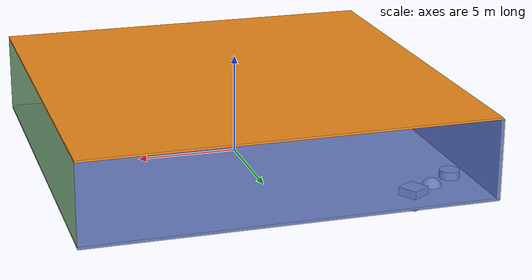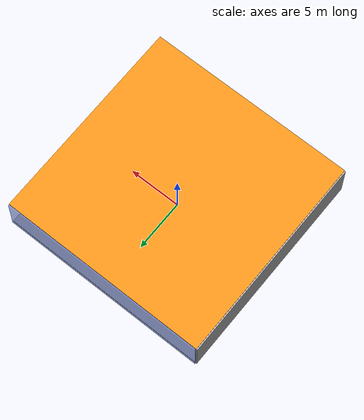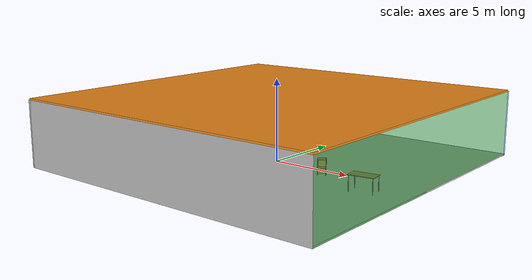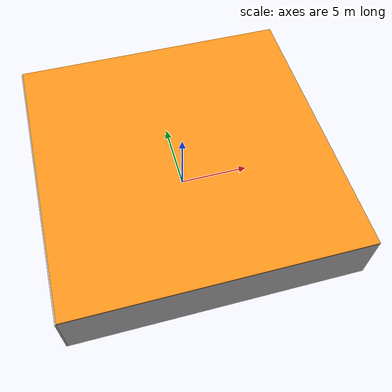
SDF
<sdf version="1.4">
 <world name="default">
  <physics type="ode">
   <max_step_size>0.001</max_step_size>
   <real_time_factor>1</real_time_factor>
   <real_time_update_rate>1000</real_time_update_rate>
   <gravity>0 0 -9.8</gravity>
  </physics>
  <scene><ambient>0.4 0.4 0.4 1</ambient><background>0.7 0.7 0.7 1</background><shadows>1</shadows></scene>
  <model name="Surrounding">
   <static>1</static>
   <link name="Ceiling">
    <collision name="Ceiling_Collision"><geometry><box><size>20 20 0.1</size></box></geometry></collision>
    <visual name="Ceiling_Visual">
     <geometry><box><size>20 20 0.1</size></box></geometry>
     <material>
      <script><uri>file://media/materials/scripts/gazebo.material</uri><name>Gazebo/Orange</name></script>
     </material>
    </visual>
    <pose>0 0 4.05 0 0 0</pose>
   </link>
   <link name="Wall_South">
    <collision name="Wall_South_Collision">
     <geometry><box><size>20 0 4</size></box></geometry>
     <pose>0 0 2 0 -0 0</pose>
    </collision>
    <visual name="Wall_South_Visual">
     <pose>0 0 2 0 -0 0</pose>
     <geometry><box><size>20 0 4</size></box></geometry>
     <material>
      <script><uri>file://media/materials/scripts/gazebo.material</uri><name>Gazebo/LightOn</name></script>
     </material>
    </visual>
    <velocity_decay><linear>0</linear><angular>0</angular></velocity_decay>
    <pose>0 -10 0 0 -0 0</pose>
   </link>
   <link name="Wall_East">
    <collision name="Wall_21_Collision">
     <geometry><box><size>20 0 4</size></box></geometry>
     <pose>0 0 2 0 -0 0</pose>
    </collision>
    <visual name="Wall_21_Visual">
     <pose>0 0 2 0 -0 0</pose>
     <geometry><box><size>20 0 4</size></box></geometry>
     <material>
      <script><uri>file://media/materials/scripts/gazebo.material</uri><name>Gazebo/GreenTransparent</name></script>
     </material>
    </visual>
    <velocity_decay><linear>0</linear><angular>0</angular></velocity_decay>
    <pose>10 0 0 0 -0 1.5708</pose>
   </link>
   <link name="Wall_North">
    <collision name="Wall_22_Collision">
     <geometry><box><size>20 0.2 4</size></box></geometry>
     <pose>0 0 2 0 -0 0</pose>
    </collision>
    <visual name="Wall_22_Visual">
     <pose>0 0 2 0 -0 0</pose>
     <geometry><box><size>20 0.2 4</size></box></geometry>
     <material>
      <script><uri>file://media/materials/scripts/gazebo.material</uri><name>Gazebo/BlueTransparent</name></script>
     </material>
    </visual>
    <velocity_decay><linear>0</linear><angular>0</angular></velocity_decay>
    <pose>0 10 0 0 -0 0</pose>
   </link>
   <link name="Wall_West">
    <collision name="Wall_23_Collision">
     <geometry><box><size>20 0.2 4</size></box></geometry>
     <pose>0 0 2 0 -0 0</pose>
    </collision>
    <visual name="Wall_23_Visual">
     <pose>0 0 2 0 -0 0</pose>
     <geometry><box><size>20 0.2 4</size></box></geometry>
     <material>
      <script><uri>file://media/materials/scripts/gazebo.material</uri><name>Gazebo/CloudySky</name></script>
     </material>
    </visual>
    <velocity_decay><linear>0</linear><angular>0</angular></velocity_decay>
    <pose>-10 0 0 0 0 -1.5708</pose>
   </link>
   <link name="Ground_link">
    <collision name="collision">
     <pose>0 0 .05 0 -0 0</pose>
     <geometry><box><size>20 20 0.1</size></box></geometry>
    </collision>
    <visual name="visual">
     <pose>0 0 .05 0 -0 0</pose>
     <geometry><box><size>20 20 0.1</size></box></geometry>
     <material>
      <script><uri>file://media/materials/scripts/gazebo.material</uri><name>Gazebo/Pioneer2Body</name></script>
     </material>
    </visual>
   </link>
   <static>1</static>
  </model>
  <spherical_coordinates>
   <surface_model>EARTH_WGS84</surface_model>
   <latitude_deg>0</latitude_deg>
   <longitude_deg>0</longitude_deg>
   <elevation>0</elevation>
   <heading_deg>0</heading_deg>
  </spherical_coordinates>
  <light name="lightball_0" type="diffuse">
   <diffuse>0.8 0.8 0.8 1</diffuse>
   <specular>0.2 0.2 0.2 1</specular>
   <attenuation>
    <range>100</range>
    <constant>0.7</constant>
    <linear>0.01</linear>
    <quadratic>0.001</quadratic>
   </attenuation>
   <direction>-0.5 0.1 -0.9</direction>
   <pose>5.12512241517 4.22105317903 3.78284284643 0 0 0</pose>
  </light>
  <light name="lightball_1" type="diffuse">
   <diffuse>0.8 0.8 0.8 1</diffuse>
   <specular>0.2 0.2 0.2 1</specular>
   <attenuation>
    <range>100</range>
    <constant>0.7</constant>
    <linear>0.01</linear>
    <quadratic>0.001</quadratic>
   </attenuation>
   <direction>-0.5 0.1 -0.9</direction>
   <pose>-6.09373479959 -5.58866130091 2.37450169521 0 0 0</pose>
  </light>
  <light name="lightball_2" type="diffuse">
   <diffuse>0.8 0.8 0.8 1</diffuse>
   <specular>0.2 0.2 0.2 1</specular>
   <attenuation>
    <range>100</range>
    <constant>0.7</constant>
    <linear>0.01</linear>
    <quadratic>0.001</quadratic>
   </attenuation>
   <direction>-0.5 0.1 -0.9</direction>
   <pose>-9.2826962754 -2.41522200567 3.29741099689 0 0 0</pose>
  </light>
  <light name="lightball_3" type="diffuse">
   <diffuse>0.8 0.8 0.8 1</diffuse>
   <specular>0.2 0.2 0.2 1</specular>
   <attenuation>
    <range>100</range>
    <constant>0.7</constant>
    <linear>0.01</linear>
    <quadratic>0.001</quadratic>
   </attenuation>
   <direction>-0.5 0.1 -0.9</direction>
   <pose>3.22892468359 -5.47058754685 1.05128812809 0 0 0</pose>
  </light>
  <light name="lightball_4" type="diffuse">
   <diffuse>0.8 0.8 0.8 1</diffuse>
   <specular>0.2 0.2 0.2 1</specular>
   <attenuation>
    <range>100</range>
    <constant>0.7</constant>
    <linear>0.01</linear>
    <quadratic>0.001</quadratic>
   </attenuation>
   <direction>-0.5 0.1 -0.9</direction>
   <pose>-3.42729114426 5.61952186561 1.46188058025 0 0 0</pose>
  </light>
  <light name="lightball_5" type="diffuse">
   <diffuse>0.8 0.8 0.8 1</diffuse>
   <specular>0.2 0.2 0.2 1</specular>
   <attenuation>
    <range>100</range>
    <constant>0.7</constant>
    <linear>0.01</linear>
    <quadratic>0.001</quadratic>
   </attenuation>
   <direction>-0.5 0.1 -0.9</direction>
   <pose>5.53591554812 -8.19523820074 2.99412547549 0 0 0</pose>
  </light>
  <light name="lightball_6" type="diffuse">
   <diffuse>0.8 0.8 0.8 1</diffuse>
   <specular>0.2 0.2 0.2 1</specular>
   <attenuation>
    <range>100</range>
    <constant>0.7</constant>
    <linear>0.01</linear>
    <quadratic>0.001</quadratic>
   </attenuation>
   <direction>-0.5 0.1 -0.9</direction>
   <pose>5.42726969293 -2.22518445737 1.51669404815 0 0 0</pose>
  </light>
  <light name="lightball_7" type="diffuse">
   <diffuse>0.8 0.8 0.8 1</diffuse>
   <specular>0.2 0.2 0.2 1</specular>
   <attenuation>
    <range>100</range>
    <constant>0.7</constant>
    <linear>0.01</linear>
    <quadratic>0.001</quadratic>
   </attenuation>
   <direction>-0.5 0.1 -0.9</direction>
   <pose>3.92855679111 -1.64981221955 0.764712430678 0 0 0</pose>
  </light>
  <light name="lightball_8" type="diffuse">
   <diffuse>0.8 0.8 0.8 1</diffuse>
   <specular>0.2 0.2 0.2 1</specular>
   <attenuation>
    <range>100</range>
    <constant>0.7</constant>
    <linear>0.01</linear>
    <quadratic>0.001</quadratic>
   </attenuation>
   <direction>-0.5 0.1 -0.9</direction>
   <pose>-2.9348345834 9.29928177228 1.36158978706 0 0 0</pose>
  </light>
  <light name="lightball_9" type="diffuse">
   <diffuse>0.8 0.8 0.8 1</diffuse>
   <specular>0.2 0.2 0.2 1</specular>
   <attenuation>
    <range>100</range>
    <constant>0.7</constant>
    <linear>0.01</linear>
    <quadratic>0.001</quadratic>
   </attenuation>
   <direction>-0.5 0.1 -0.9</direction>
   <pose>-8.91385295296 -9.75492982236 3.50187521427 0 0 0</pose>
  </light>
  <light name="lightball_10" type="diffuse">
   <diffuse>0.8 0.8 0.8 1</diffuse>
   <specular>0.2 0.2 0.2 1</specular>
   <attenuation>
    <range>100</range>
    <constant>0.7</constant>
    <linear>0.01</linear>
    <quadratic>0.001</quadratic>
   </attenuation>
   <direction>-0.5 0.1 -0.9</direction>
   <pose>-7.30330136603 3.28929960534 1.30818447717 0 0 0</pose>
  </light>
  <include>
   <uri>model://textured_shapes</uri>
   <pose>-7.61241600501 7.65115245031 0 0 0 2.12663050162</pose>
  </include>
  <include><uri>model://cabinet</uri><pose>3.99102096946 -0.976783138817 0 0 0 2.12346546964</pose></include>
  <include><uri>model://table</uri><pose>7.49363152515 -2.19414980913 0 0 0 0.134579352105</pose></include>
 </world>
</sdf>

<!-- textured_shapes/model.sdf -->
<sdf version="1.6">
  <model name="textured_shapes">
    <pose>0 0 0.5 0 0 0</pose>
    <link name="box">
      <pose>0 -1.5 0 0 0 0</pose>
      <collision name="collision">
        <geometry>
          <box>
            <size>1 1 1</size>
          </box>
        </geometry>
      </collision>
      <visual name="visual">
        <geometry>
          <box>
            <size>1 1 1</size>
          </box>
        </geometry>
        <material>
          <script>
            <uri>model://../model_source/models/textured_shapes/materials/scripts</uri>
            <uri>model://../model_source/models/textured_shapes/materials/textures</uri>
            <name>TexturedShape/Squares</name>
          </script>
        </material>
      </visual>
    </link>
    <link name="sphere">
      <collision name="collision">
        <geometry>
          <sphere>
            <radius>0.5</radius>
          </sphere>
        </geometry>
      </collision>
      <visual name="visual">
        <geometry>
          <sphere>
            <radius>0.5</radius>
          </sphere>
        </geometry>
        <material>
          <script>
            <uri>model://../model_source/models/textured_shapes/materials/scripts</uri>
            <uri>model://../model_source/models/textured_shapes/materials/textures</uri>
            <name>TexturedShape/Squares</name>
          </script>
        </material>
      </visual>
    </link>
    <link name="cylinder">
      <pose>0 1.5 0 0 0 0</pose>
      <collision name="collision">
        <geometry>
          <cylinder>
            <radius>0.5</radius>
            <length>1</length>
          </cylinder>
        </geometry>
      </collision>
      <visual name="visual">
        <geometry>
          <cylinder>
            <radius>0.5</radius>
            <length>1</length>
          </cylinder>
        </geometry>
        <material>
          <script>
            <uri>model://../model_source/models/textured_shapes/materials/scripts</uri>
            <uri>model://../model_source/models/textured_shapes/materials/textures</uri>
            <name>TexturedShape/Squares</name>
          </script>
        </material>
      </visual>
    </link>
  </model>
</sdf>

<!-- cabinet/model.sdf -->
<sdf version="1.5">
  <model name="cabinet">
    <static>true</static>
    <link name="cabinet_bottom_plate">
      <inertial>
        <pose>0 0 -1 0 0 0</pose>
        <inertia>
          <ixx>2.050000</ixx>
          <ixy>0</ixy>
          <ixz>0</ixz>
          <iyy>2.050000</iyy>
          <iyz>0</iyz>
          <izz>2.050000</izz>
        </inertia>
        <mass>25.000000</mass>
      </inertial>
      <collision name="cabinet_bottom_plate_geom">
        <pose>0 0 0.010000 0 0 0</pose>
        <geometry>
          <box>
            <size>0.450000 0.450000 0.020000</size>
          </box>
        </geometry>
      </collision>
      <visual name="cabinet_bottom_plate_geom_visual">
        <pose>0 0 0.010000 0 0 0</pose>
        <geometry>
          <box>
            <size>0.450000 0.450000 0.020000</size>
          </box>
        </geometry>
        <material>
          <script>
            <uri>model://media/materials/scripts/gazebo.material</uri>
            <name>Gazebo/Wood</name>
          </script>
        </material>
      </visual>
      <collision name="cabinet_bottom_plate_geom_cabinet_back_plate">
        <pose>0.235000 0 0.510000 0 0 0</pose>
        <geometry>
          <box>
            <size>0.020000 0.450000 1.020000</size>
          </box>
        </geometry>
      </collision>
      <visual name="cabinet_bottom_plate_geom_cabinet_back_plate_visual">
        <pose>0.235000 0 0.510000 0 0 0</pose>
        <geometry>
          <box>
            <size>0.020000 0.450000 1.020000</size>
          </box>
        </geometry>
        <material>
          <script>
            <uri>model://media/materials/scripts/gazebo.material</uri>
            <name>Gazebo/Wood</name>
          </script>
        </material>
      </visual>
      <collision name="cabinet_bottom_plate_geom_cabinet_left_plate">
        <pose>0 0.235000 0.510000 0 0 0</pose>
        <geometry>
          <box>
            <size>0.450000 0.020000 1.020000</size>
          </box>
        </geometry>
      </collision>
      <visual name="cabinet_bottom_plate_geom_cabinet_left_plate_visual">
        <pose>0 0.235000 0.510000 0 0 0</pose>
        <geometry>
          <box>
            <size>0.450000 0.020000 1.020000</size>
          </box>
        </geometry>
        <material>
          <script>
            <uri>model://media/materials/scripts/gazebo.material</uri>
            <name>Gazebo/Wood</name>
          </script>
        </material>
      </visual>
      <collision name="cabinet_bottom_plate_geom_cabinet_middle_plate">
        <pose>0 0 0.510000 0 0 0</pose>
        <geometry>
          <box>
            <size>0.450000 0.450000 0.020000</size>
          </box>
        </geometry>
      </collision>
      <visual name="cabinet_bottom_plate_geom_cabinet_middle_plate_visual">
        <pose>0 0 0.510000 0 0 0</pose>
        <geometry>
          <box>
            <size>0.450000 0.450000 0.020000</size>
          </box>
        </geometry>
        <material>
          <script>
            <uri>model://media/materials/scripts/gazebo.material</uri>
            <name>Gazebo/Wood</name>
          </script>
        </material>
      </visual>
      <collision name="cabinet_bottom_plate_geom_cabinet_right_plate">
        <pose>0 -0.235000 0.510000 0 0 0</pose>
        <geometry>
          <box>
            <size>0.450000 0.020000 1.020000</size>
          </box>
        </geometry>
      </collision>
      <visual name="cabinet_bottom_plate_geom_cabinet_right_plate_visual">
        <pose>0 -0.235000 0.510000 0 0 0</pose>
        <geometry>
          <box>
            <size>0.450000 0.020000 1.020000</size>
          </box>
        </geometry>
        <material>
          <script>
            <uri>model://media/materials/scripts/gazebo.material</uri>
            <name>Gazebo/Wood</name>
          </script>
        </material>
      </visual>
      <collision name="cabinet_bottom_plate_geom_cabinet_top_plate">
        <pose>0 0 1.010000 0 0 0</pose>
        <geometry>
          <box>
            <size>0.450000 0.450000 0.020000</size>
          </box>
        </geometry>
      </collision>
      <visual name="cabinet_bottom_plate_geom_cabinet_top_plate_visual">
        <pose>0 0 1.010000 0 0 0</pose>
        <geometry>
          <box>
            <size>0.450000 0.450000 0.020000</size>
          </box>
        </geometry>
        <material>
          <script>
            <uri>model://media/materials/scripts/gazebo.material</uri>
            <name>Gazebo/Wood</name>
          </script>
        </material>
      </visual>
    </link>
  </model>
</sdf>

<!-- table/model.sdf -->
<sdf version="1.5">
  <model name="table">
    <static>true</static>
    <link name="link">
      <collision name="surface">
        <pose>0 0 1.0 0 0 0</pose>
        <geometry>
          <box>
            <size>1.5 0.8 0.03</size>
          </box>
        </geometry>
        <surface>
          <friction>
            <ode>
              <mu>0.6</mu>
              <mu2>0.6</mu2>
            </ode>
          </friction>
        </surface>
      </collision>
      <visual name="visual1">
        <pose>0 0 1.0 0 0 0</pose>
        <geometry>
          <box>
            <size>1.5 0.8 0.03</size>
          </box>
        </geometry>
        <material>
          <script>
            <uri>model://media/materials/scripts/gazebo.material</uri>
            <name>Gazebo/Wood</name>
          </script>
        </material>
      </visual>
      <collision name="front_left_leg">
        <pose>0.68 0.38 0.5 0 0 0</pose>
        <geometry>
          <cylinder>
            <radius>0.02</radius>
            <length>1.0</length>
          </cylinder>
        </geometry>
      </collision>
      <visual name="front_left_leg">
        <pose>0.68 0.38 0.5 0 0 0</pose>
        <geometry>
          <cylinder>
            <radius>0.02</radius>
            <length>1.0</length>
          </cylinder>
        </geometry>
        <material>
          <script>
            <uri>model://media/materials/scripts/gazebo.material</uri>
            <name>Gazebo/Grey</name>
          </script>
        </material>
      </visual>
      <collision name="front_right_leg">
        <pose>0.68 -0.38 0.5 0 0 0</pose>
        <geometry>
          <cylinder>
            <radius>0.02</radius>
            <length>1.0</length>
          </cylinder>
        </geometry>
      </collision>
      <visual name="front_right_leg">
        <pose>0.68 -0.38 0.5 0 0 0</pose>
        <geometry>
          <cylinder>
            <radius>0.02</radius>
            <length>1.0</length>
          </cylinder>
        </geometry>
        <material>
          <script>
            <uri>model://media/materials/scripts/gazebo.material</uri>
            <name>Gazebo/Grey</name>
          </script>
        </material>
      </visual>
      <collision name="back_right_leg">
        <pose>-0.68 -0.38 0.5 0 0 0</pose>
        <geometry>
          <cylinder>
            <radius>0.02</radius>
            <length>1.0</length>
          </cylinder>
        </geometry>
      </collision>
      <visual name="back_right_leg">
        <pose>-0.68 -0.38 0.5 0 0 0</pose>
        <geometry>
          <cylinder>
            <radius>0.02</radius>
            <length>1.0</length>
          </cylinder>
        </geometry>
        <material>
          <script>
            <uri>model://media/materials/scripts/gazebo.material</uri>
            <name>Gazebo/Grey</name>
          </script>
        </material>
      </visual>
      <collision name="back_left_leg">
        <pose>-0.68 0.38 0.5 0 0 0</pose>
        <geometry>
          <cylinder>
            <radius>0.02</radius>
            <length>1.0</length>
          </cylinder>
        </geometry>
      </collision>
      <visual name="back_left_leg">
        <pose>-0.68 0.38 0.5 0 0 0</pose>
        <geometry>
          <cylinder>
            <radius>0.02</radius>
            <length>1.0</length>
          </cylinder>
        </geometry>
        <material>
          <script>
            <uri>model://media/materials/scripts/gazebo.material</uri>
            <name>Gazebo/Grey</name>
          </script>
        </material>
      </visual>
    </link>
  </model>
</sdf>
